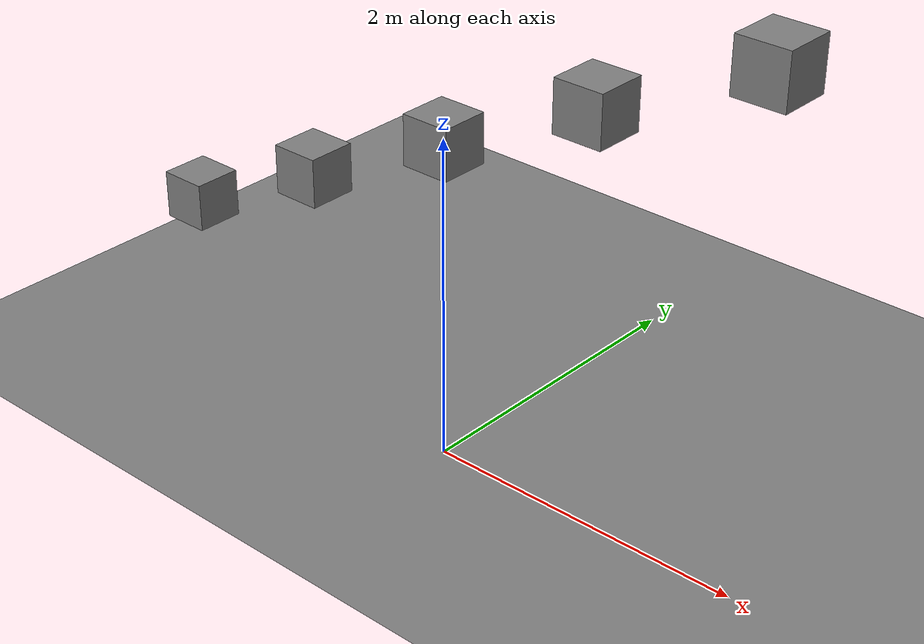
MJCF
<mujoco model="sleep-settle">
  <option gravity="0 0 -9.81" timestep="0.002" sleep_tolerance="0.05">
    <flag sleep="enable"/>
  </option>
  <worldbody>
    <geom name="floor" type="plane" size="5 5 0.1" solref="0.005 1.5"/>
    <body name="box_0" pos="-2 0 1.0"><freejoint/>
      <geom name="g0" type="box" size="0.15 0.15 0.15" mass="1" solref="0.005 1.5"/></body>
    <body name="box_1" pos="-1 0 1.5"><freejoint/>
      <geom name="g1" type="box" size="0.15 0.15 0.15" mass="1" solref="0.005 1.5"/></body>
    <body name="box_2" pos="0 0 2.0"><freejoint/>
      <geom name="g2" type="box" size="0.15 0.15 0.15" mass="1" solref="0.005 1.5"/></body>
    <body name="box_3" pos="1 0 2.5"><freejoint/>
      <geom name="g3" type="box" size="0.15 0.15 0.15" mass="1" solref="0.005 1.5"/></body>
    <body name="box_4" pos="2 0 3.0"><freejoint/>
      <geom name="g4" type="box" size="0.15 0.15 0.15" mass="1" solref="0.005 1.5"/></body>
  </worldbody>
</mujoco>
